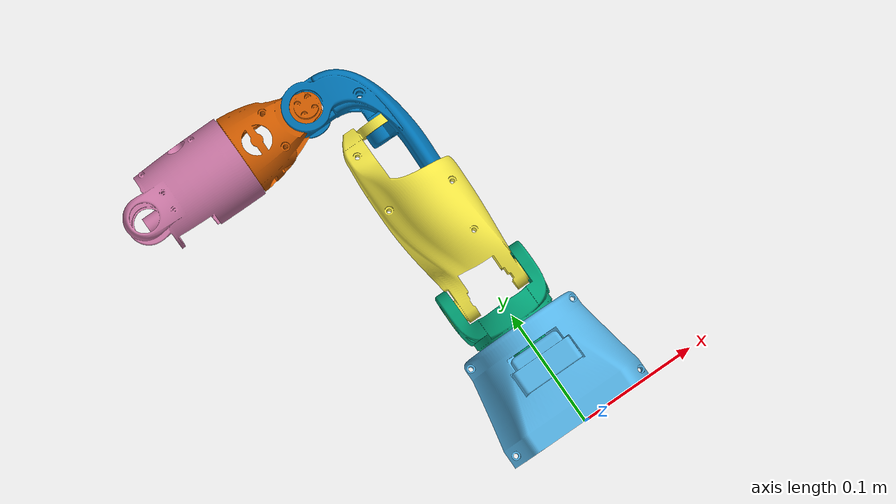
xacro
<?xml version="1.0"?>
<robot name="hopejr_arm" xmlns:xacro="http://www.ros.org/wiki/xacro">
    <xacro:macro name="hopejr_arm_macro" params="prefix parent_link xyz rpy">

        <link name="${prefix}base_link">
            <visual>
                <origin xyz="0 0 0" rpy="${pi/180*0} 0 0"/>
                <geometry>
                    <mesh filename="package://hopejr_arm_description/meshes/visual/base_link.dae" scale="1 1 1"/>
                </geometry>
            </visual>
            <collision>
                <origin xyz="0 0 0" rpy="0 0 0"/>
                <geometry>
                    <mesh filename="package://hopejr_arm_description/meshes/collision/base_link.stl" scale="1 1 1"/>
                </geometry>
            </collision>
            <inertial>
                <origin xyz="-0.02 0 0.028" rpy="0 0 0"/>
                <mass value="1.260139"/>
                <inertia ixx="0.003444" ixy="0.000000060725" ixz="0.000000223974" iyy="0.003173" iyz="0.0003306" izz="0.002316"/>
            </inertial>
        </link>

        <joint name="${prefix}base_link_fixed" type="fixed">
            <parent link="${parent_link}"/>
            <child link="${prefix}base_link"/>
            <origin xyz="${xyz}" rpy="${rpy}"/>
        </joint>

        <link name="${prefix}shoulder_yaw">
            <visual>
                <origin xyz="0 0 0" rpy="0 0 0"/>
                <geometry>
                    <mesh filename="package://hopejr_arm_description/meshes/visual/shoulder_yaw.dae" scale="1 1 1"/>
                </geometry>
            </visual>
            <collision>
                <origin xyz="0 0 0" rpy="0 0 0"/>
                <geometry>
                    <mesh filename="package://hopejr_arm_description/meshes/collision/shoulder_yaw.stl" scale="1 1 1"/>
                </geometry>
            </collision>
            <inertial>
                <origin xyz="0 0 0" rpy="0 0 0"/>
                <mass value="0.252213"/>
                <inertia ixx="0.0001227" ixy="0.000000629536" ixz="-0.000000333468" iyy="0.0001678" iyz="-0.000000674054" izz="0.0001553"/>
            </inertial>
        </link>

        <joint name="${prefix}shoulder_pitch" type="revolute">
            <parent link="${prefix}base_link"/>
            <child link="${prefix}shoulder_yaw"/>
            <origin xyz="0 0.07106 0.04453" rpy="0 0 0"/>
            <axis xyz="0 1 0"/>
            <limit effort="10" velocity="1.0" lower="-1.714990520856147" upper="1.6981167321894048" />
        </joint>

        <link name="${prefix}shoulder_roll">
            <visual>
                <origin xyz="0 0 0" rpy="0 0 0"/>
                <geometry>
                    <mesh filename="package://hopejr_arm_description/meshes/visual/shoulder_roll.dae" scale="1 1 1"/>
                </geometry>
            </visual>
            <collision>
                <origin xyz="0 0 0" rpy="0 0 0"/>
                <geometry>
                    <mesh filename="package://hopejr_arm_description/meshes/collision/shoulder_roll.stl" scale="1 1 1"/>
                </geometry>
            </collision>
            <inertial>
                <origin xyz="-0.02 0 0.028" rpy="0 0 0"/>
                <mass value="0.422614"/>
                <inertia ixx="0.0006959" ixy="0.000006134701" ixz="-0.000083430347" iyy="0.0007655" iyz="0.000025066263" izz="0.0002446"/>
            </inertial>
        </link>

        <joint name="${prefix}shoulder_yaw" type="revolute"> <parent link="${prefix}shoulder_yaw"/>
            <parent link="${prefix}shoulder_yaw"/>
            <child link="${prefix}shoulder_roll"/>
            <origin xyz="0 0.05585 0" rpy="${-pi/2} 0 0"/>
            <axis xyz="1 0 0"/>
            <limit effort="10" velocity="1.0" lower="-0.5568350260024877" upper="1.2839419194602817" />
        </joint>

        <link name="${prefix}upper_elbow">
            <visual>
                <origin xyz="0 0 0" rpy="0 0 0"/>
                <geometry>
                    <mesh filename="package://hopejr_arm_description/meshes/visual/upper_elbow.dae" scale="1 1 1"/>
                </geometry>
            </visual>
            <collision>
                <origin xyz="0 0 0" rpy="0 0 0"/>
                <geometry>
                    <mesh filename="package://hopejr_arm_description/meshes/collision/upper_elbow.stl" scale="1 1 1"/>
                </geometry>
            </collision>
            <inertial>
                <origin xyz="-0.02 0 0.028" rpy="0 0 0"/>
                <mass value="0.243803"/>
                <inertia ixx="0.0003227" ixy="-0.000000062111" ixz="-0.0001214" iyy="0.0003959" iyz="-0.000000048168" izz="0.0001746"/>
            </inertial>
        </link>

        <joint name="${prefix}shoulder_roll" type="revolute"> <parent link="${prefix}shoulder_roll"/>
            <parent link="${prefix}shoulder_roll"/>
            <child link="${prefix}upper_elbow"/>
            <origin xyz="0 0 0.0884" rpy="0 0 0"/>
            <axis xyz="0 0 1"/>
            <limit effort="10" velocity="1.0" lower="-0.8943107993373288" upper="1.1612234564294304" />
        </joint>

        <link name="${prefix}lower_elbow">
            <visual>
                <origin xyz="0 0 0" rpy="0 ${pi/2} 0"/>
                <geometry>
                    <mesh filename="package://hopejr_arm_description/meshes/visual/lower_elbow.dae" scale="1 1 1"/>
                </geometry>
            </visual>
            <collision>
                <origin xyz="0 0 0" rpy="0 ${pi/2} 0"/>
                <geometry>
                    <mesh filename="package://hopejr_arm_description/meshes/collision/lower_elbow.stl" scale="1 1 1"/>
                </geometry>
            </collision>
            <inertial>
                <origin xyz="-0.02 0 0.028" rpy="0 0 0"/>
                <mass value="0.1882"/>
                <inertia ixx="0.0001196" ixy="0.000002288885" ixz="0.000001137302" iyy="0.000096307138" iyz="0.000003223544" izz="0.0001047"/>
            </inertial>
        </link>

        <joint name="${prefix}elbow_flex" type="revolute">
            <parent link="${prefix}upper_elbow"/>
            <child link="${prefix}lower_elbow"/>
            <origin xyz="0.03765 0 0.11311" rpy="0 0 0"/>
            <axis xyz="0 -1 0"/>
            <limit effort="10" velocity="1.0" lower="-0.8851069146100149" upper="1.500233210552157" />
        </joint>

        <link name="${prefix}forearm">
            <visual>
                <origin xyz="0 0 0" rpy="0 ${pi/2} 0"/>
                <geometry>
                    <mesh filename="package://hopejr_arm_description/meshes/visual/forearm.dae" scale="1 1 1"/>
                </geometry>
            </visual>
            <collision>
                <origin xyz="0 0 0" rpy="0 ${pi/2} 0"/>
                <geometry>
                    <mesh filename="package://hopejr_arm_description/meshes/collision/forearm.stl" scale="1 1 1"/>
                </geometry>
            </collision>
            <inertial>
                <origin xyz="-0.02 0 0.028" rpy="0 0 0"/>
                <mass value="0.208355"/>
                <inertia ixx="0.0002051" ixy="0.000000044894" ixz="-0.000004226706" iyy="0.0002222" iyz="-0.000002431512" izz="0.0001122"/>
            </inertial>
        </link>

        <joint name="${prefix}wrist_roll" type="revolute">
            <parent link="${prefix}lower_elbow"/>
            <child link="${prefix}forearm"/>
            <origin xyz="0.06325 0 0" rpy="${-pi/2} 0 0"/>
            <axis xyz="-1 0 0"/>
            <limit effort="10" velocity="1.0" lower="-2.388408086737943" upper="2.136835237524698" />
        </joint>

    </xacro:macro>

    <link name="base_footprint"/>
    <xacro:hopejr_arm_macro
        prefix=""
        parent_link="base_footprint"
        xyz="0 0 0"
        rpy="0 ${pi} 0"
    />

</robot>
